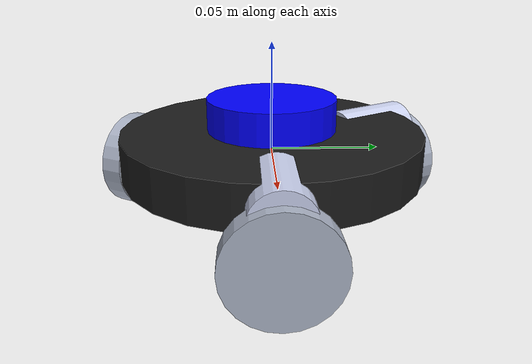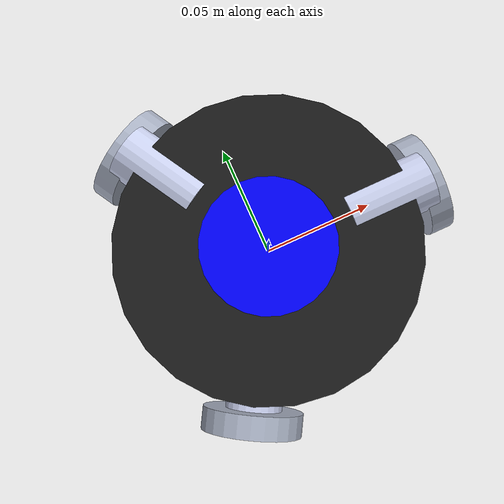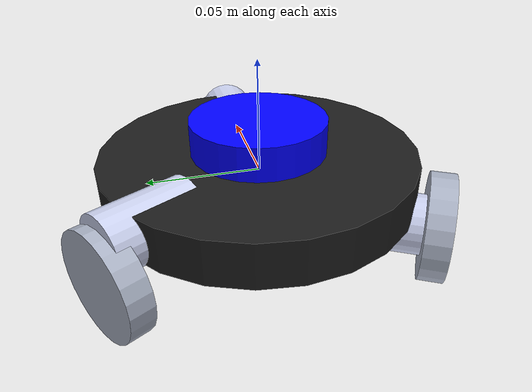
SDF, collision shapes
<?xml version="1.0" ?>
<sdf version="1.6">
  <model name="slam_bot">
    <link name="base_link">
      <pose>0 0 0 0 0 0</pose>
      <inertial>
        <pose>0 0 0 0 0 0</pose>
        <mass>0.029663</mass>
        <inertia>
          <ixx>2.3758E-05</ixx>
          <ixy>-3.5155E-21</ixy>
          <ixz>-2.2616E-23</ixz>
          <iyy>2.3758E-05</iyy>
          <iyz>1.4972E-21</iyz>
          <izz>4.7471E-05</izz>
        </inertia>
      </inertial>
      <visual name="visual">
        <pose>0 0 0 0 0 0</pose>
        <geometry>
          <cylinder>
            <length>0.02</length>
            <radius>0.07</radius>
          </cylinder>
        </geometry>
        <material>
          <ambient>0.1098 0.1098 0.1098 1</ambient>
          <diffuse>0.1098 0.1098 0.1098 1</diffuse>
          <specular>0.01 0.01 0.01 1</specular>
          <emissive>0 0 0 0</emissive>
        </material>
      </visual>
      <collision name="collision">
        <pose>0 0 0 0 0 0</pose>
        <geometry>
          <cylinder>
            <length>0.02</length>
            <radius>0.07</radius>
          </cylinder>
        </geometry>
      </collision>
      <sensor name="imu_sensor" type="imu">
        <always_on>1</always_on>
        <update_rate>100</update_rate>
        <visualize>true</visualize>
        <topic>imu</topic>
      </sensor>
    </link>

    <link name="lidar_link">
      <inertial>
        <mass>0.1</mass>
        <inertia>
          <ixx>0.0001</ixx>
          <ixy>0</ixy>
          <ixz>0</ixz>
          <iyy>0.0001</iyy>
          <iyz>0</iyz>
          <izz>0.0001</izz>
        </inertia>
      </inertial>
      <visual name="visual">
        <geometry>
          <cylinder>
            <radius>0.03</radius>
            <length>0.05</length>
          </cylinder>
        </geometry>
        <material>
          <ambient>0.0 0.0 1.0 1</ambient> <diffuse>0.0 0.0 1.0 1</diffuse>
        </material>
      </visual>
      <collision name="collision">
        <geometry>
          <cylinder>
            <radius>0.03</radius>
            <length>0.05</length>
          </cylinder>
        </geometry>
      </collision>
      <sensor name='gpu_lidar' type='gpu_lidar'>
        <pose relative_to='lidar_link'>0 0 0 0 0 0</pose>
        <topic>lidar</topic>
        <update_rate>10</update_rate>
        <ray>
          <scan>
            <horizontal>
              <samples>640</samples>
              <resolution>1</resolution>
              <min_angle>-1.396263</min_angle>
              <max_angle>1.396263</max_angle>
            </horizontal>
            <vertical>
              <samples>1</samples>
              <resolution>0.01</resolution>
              <min_angle>0</min_angle>
              <max_angle>0</max_angle>
            </vertical>
          </scan>
          <range>
            <min>0.08</min>
            <max>10.0</max>
            <resolution>0.01</resolution>
          </range>
        </ray>
        <always_on>1</always_on>
        <visualize>true</visualize>
      </sensor>
    </link>

    <joint name="lidar_joint" type="fixed">
      <parent>base_link</parent>
      <child>lidar_link</child>
      <pose>0 0 0.05 0 0 0</pose>
    </joint>

    <link name="motor1_Link">
      <pose>0.06 0 -0.00150 3.14159 1.5708 0</pose>
      <inertial>
        <pose>0.0012149 8.9994E-06 -0.014697 0 0 0</pose>
        <mass>0.027587</mass>
        <inertia>
          <ixx>2.5276E-06</ixx>
          <ixy>5.6421E-10</ixy>
          <ixz>-2.5995E-07</ixz>
          <iyy>4.8805E-06</iyy>
          <iyz>-3.1417E-09</iyz>
          <izz>4.8985E-06</izz>
        </inertia>
      </inertial>
      <visual name="visual">
        <pose>0 0 0 0 1.5708 3.14159</pose>
        <geometry>
          <mesh>
            <uri>package://slam_bot_description/models/slam_bot/meshes/motor1_Link.STL</uri>
            <scale>1 1 1</scale>
          </mesh>
        </geometry>
        <material>
          <ambient>0.79216 0.81961 0.93333 1</ambient>
          <diffuse>0.79216 0.81961 0.93333 1</diffuse>
          <specular>0.1 0.1 0.1 1</specular>
          <emissive>0 0 0 0</emissive>
        </material>
      </visual>
      <collision name="collision">
        <pose>0 0 0 0 0 0</pose>
        <geometry>
          <cylinder>
            <length>0.04</length>
            <radius>0.0135</radius>
          </cylinder>
        </geometry>
      </collision>
    </link>

    <joint name="motor1_joint" type="fixed">
      <parent>base_link</parent>
      <child>motor1_Link</child>
    </joint>

    <link name="wheel1_Link">
      <pose>0.08 0 -0.0175 -1.5708 0 1.5708</pose>
      <inertial>
        <pose>-3.0531E-16 1.7347E-17 0.0059184 0 0 0</pose>
        <mass>0.045958</mass>
        <inertia>
          <ixx>7.0814e-06</ixx>
          <ixy>0</ixy>
          <ixz>0</ixz>
          <iyy>7.0814e-06</iyy>
          <iyz>0</iyz>
          <izz>1.3236e-05</izz>
        </inertia>
      </inertial>
      <visual name="visual">
        <pose>0 0 0 3.14159 0 0</pose>
        <geometry>
          <mesh> <uri>package://slam_bot_description/models/slam_bot/meshes/wheel1_Link.STL</uri>
            <scale>0.77 0.77 0.77</scale>
          </mesh>
        </geometry>
        <material>
          <ambient>0.66667 0.69804 0.76863 1</ambient>
          <diffuse>0.66667 0.69804 0.76863 1</diffuse>
          <specular>0.1 0.1 0.1 1</specular>
          <emissive>0 0 0 0</emissive>
        </material>
      </visual>

      <visual name="rubber_visual">
        <pose>0 0 0 3.14159 0 0</pose>
        <geometry>
          <mesh>
            <uri>package://slam_bot_description/models/slam_bot/meshes/rubber1_Link.STL</uri>
            <scale>0.77 0.77 0.77</scale>
          </mesh>
        </geometry>
        <material>
          <ambient>0.1 0.1 0.1 1</ambient>
          <diffuse>0.1 0.1 0.1 1</diffuse>
        </material>
      </visual>

      <collision name="collision">
        <pose>0 0 0 0 0 0</pose>
        <geometry>
          <cylinder>
            <length>0.011</length>
            <radius>0.024</radius>
          </cylinder>
        </geometry>
      </collision>
    </link>

    <joint name="wheel1_joint" type="revolute">
      <parent>motor1_Link</parent>
      <child>wheel1_Link</child>
      <axis>
        <xyz>0 0 1</xyz>
        <limit>
          <lower>-1e16</lower>
          <upper>1e16</upper>
        </limit>
      </axis>
    </joint>

    <link name="motor2_Link">
      <pose>-0.03 0.052 -0.00150 0 1.5708 2.0944</pose>
      <inertial>
        <pose>-0.0012149 -8.9994E-06 -0.014697 0 0 0</pose>
        <mass>0.027587</mass>
        <inertia>
          <ixx>2.5276E-06</ixx>
          <ixy>5.6421E-10</ixy>
          <ixz>2.5995E-07</ixz>
          <iyy>4.8805E-06</iyy>
          <iyz>3.1417E-09</iyz>
          <izz>4.8985E-06</izz>
        </inertia>
      </inertial>
      <visual name="visual">
        <pose>0 0 0 0 1.5708 3.14159</pose>
        <geometry>
          <mesh>
            <uri>package://slam_bot_description/models/slam_bot/meshes/motor2_Link.STL</uri>
            <scale>1 1 1</scale>
          </mesh>
        </geometry>
        <material>
          <ambient>0.79216 0.81961 0.93333 1</ambient>
          <diffuse>0.79216 0.81961 0.93333 1</diffuse>
          <specular>0.1 0.1 0.1 1</specular>
          <emissive>0 0 0 0</emissive>
        </material>
      </visual>
      <collision name="collision">
        <pose>0 0 0 0 0 0</pose>
        <geometry>
          <cylinder>
            <length>0.04</length>
            <radius>0.0135</radius>
          </cylinder>
        </geometry>
      </collision>
    </link>

    <joint name="motor2_joint" type="fixed">
      <parent>base_link</parent>
      <child>motor2_Link</child>
    </joint>

    <link name="wheel2_Link">
      <pose>-0.04 0.069 -0.0175 -1.5708 0 3.6652</pose>
      <inertial>
        <pose>8.3267E-17 1.0408E-17 0.0059184 0 0 0</pose>
        <mass>0.045958</mass>
        <inertia>
          <ixx>7.0814e-06</ixx>
          <ixy>0</ixy>
          <ixz>0</ixz>
          <iyy>7.0814e-06</iyy>
          <iyz>0</iyz>
          <izz>1.3236e-05</izz>
        </inertia>
      </inertial>
      <visual name="visual">
        <pose>0 0 0 3.14159 0 0</pose>
        <geometry>
          <mesh> <uri>package://slam_bot_description/models/slam_bot/meshes/wheel2_Link.STL</uri>
            <scale>1 1 1</scale>
          </mesh>
        </geometry>
        <material>
          <ambient>0.66667 0.69804 0.76863 1</ambient>
          <diffuse>0.66667 0.69804 0.76863 1</diffuse>
          <specular>0.1 0.1 0.1 1</specular>
          <emissive>0 0 0 0</emissive>
        </material>
      </visual>

      <visual name="rubber_visual">
        <pose>0 0 0 3.14159 0 0</pose>
        <geometry>
          <mesh>
            <uri>package://slam_bot_description/models/slam_bot/meshes/rubber2_Link.STL</uri>
            <scale>1 1 1</scale>
          </mesh>
        </geometry>
        <material>
          <ambient>0.1 0.1 0.1 1</ambient>
          <diffuse>0.1 0.1 0.1 1</diffuse>
        </material>
      </visual>

      <collision name="collision">
        <pose>0 0 0 0 0 0</pose>
        <geometry>
          <cylinder>
            <length>0.011</length>
            <radius>0.024</radius>
          </cylinder>
        </geometry>
      </collision>
    </link>

    <joint name="wheel2_joint" type="revolute">
      <parent>motor2_Link</parent>
      <child>wheel2_Link</child>
      <axis>
        <xyz>0 0 1</xyz>
        <limit>
          <lower>-1e16</lower>
          <upper>1e16</upper>
        </limit>
      </axis>
    </joint>

    <link name="motor3_Link">
      <pose>-0.03 -0.052 -0.0175 3.14159 1.5708 -2.0944</pose>
      <inertial>
        <pose>8.9994E-06 -0.0012149 -0.014697 0 0 0</pose>
        <mass>0.027587</mass>
        <inertia>
          <ixx>4.8805E-06</ixx>
          <ixy>-5.6421E-10</ixy>
          <ixz>-3.1417E-09</ixz>
          <iyy>2.5276E-06</iyy>
          <iyz>2.5995E-07</iyz>
          <izz>4.8985E-06</izz>
        </inertia>
      </inertial>
      <visual name="visual">
        <pose>-0.016 0 0 -1.5708 3.14159 1.5708</pose>
        <geometry>
          <mesh>
            <uri>package://slam_bot_description/models/slam_bot/meshes/motor3_Link.STL</uri>
            <scale>1 1 1</scale>
          </mesh>
        </geometry>
        <material>
          <ambient>0.79216 0.81961 0.93333 1</ambient>
          <diffuse>0.79216 0.81961 0.93333 1</diffuse>
          <specular>0.1 0.1 0.1 1</specular>
          <emissive>0 0 0 0</emissive>
        </material>
      </visual>
      <collision name="collision">
        <pose>0 0 0 0 0 0</pose>
        <geometry>
          <cylinder>
            <length>0.04</length>
            <radius>0.0135</radius>
          </cylinder>
        </geometry>
      </collision>
    </link>

    <joint name="motor3_joint" type="fixed">
      <parent>base_link</parent>
      <child>motor3_Link</child>
    </joint>

    <link name="wheel3_Link">
      <pose>-0.04 -0.069 -0.0175 -1.5708 0 -0.5236</pose>
      <inertial>
        <pose>-3.3307E-16 -1.36E-15 0.0059184 0 0 0</pose>
        <mass>0.045958</mass>
        <inertia>
          <ixx>7.0814e-06</ixx>
          <ixy>0</ixy>
          <ixz>0</ixz>
          <iyy>7.0814e-06</iyy>
          <iyz>0</iyz>
          <izz>1.3236e-05</izz>
        </inertia>
      </inertial>
      <visual name="visual">
        <pose>0 0 0 3.14159 0 0</pose>
        <geometry>
          <mesh> <uri>package://slam_bot_description/models/slam_bot/meshes/wheel3_Link.STL</uri>
            <scale>1 1 1</scale>
          </mesh>
        </geometry>
        <material>
          <ambient>0.66667 0.69804 0.76863 1</ambient>
          <diffuse>0.66667 0.69804 0.76863 1</diffuse>
          <specular>0.1 0.1 0.1 1</specular>
          <emissive>0 0 0 0</emissive>
        </material>
      </visual>

      <visual name="rubber_visual">
        <pose>0 0 0 3.14159 0 0</pose>
        <geometry>
          <mesh>
            <uri>package://slam_bot_description/models/slam_bot/meshes/rubber3_Link.STL</uri>
            <scale>1 1 1</scale>
          </mesh>
        </geometry>
        <material>
          <ambient>0.1 0.1 0.1 1</ambient>
          <diffuse>0.1 0.1 0.1 1</diffuse>
        </material>
      </visual>

      <collision name="collision">
        <pose>0 0 0 0 0 0</pose>
        <geometry>
          <cylinder>
            <length>0.011</length>
            <radius>0.024</radius>
          </cylinder>
        </geometry>
      </collision>
    </link>

    <joint name="wheel3_joint" type="revolute">
      <parent>motor3_Link</parent>
      <child>wheel3_Link</child>
      <axis>
        <xyz>0 0 1</xyz>
        <limit>
          <lower>-1e16</lower>
          <upper>1e16</upper>
        </limit>
      </axis>
    </joint>
  </model>
</sdf>
